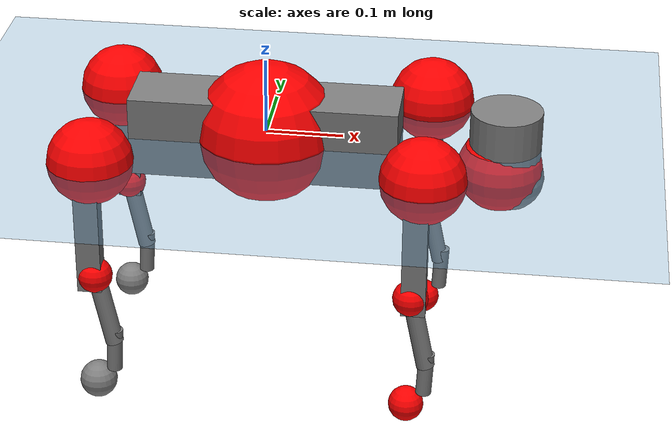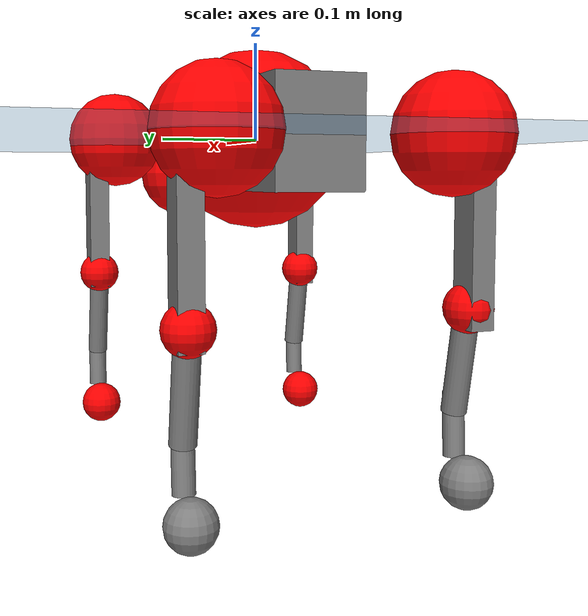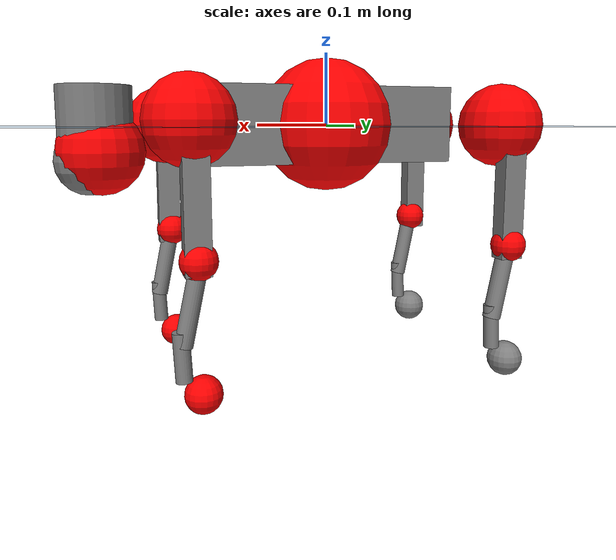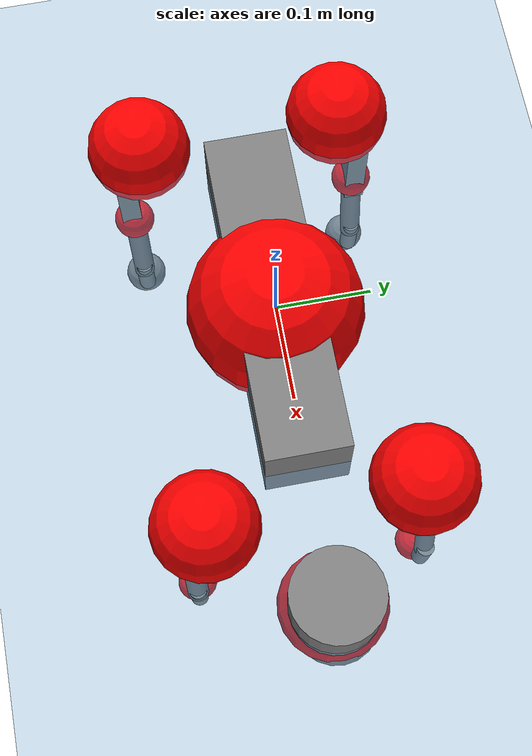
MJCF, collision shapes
<mujoco model="go2">
  <compiler angle="radian" assetdir="assets" balanceinertia="true" inertiafromgeom="false"/>

  <option timestep="0.005" density="1.2" viscosity="2e-05"/>

  <size nkey="1"/>

  <visual>
    <quality shadowsize="8192"/>
    <map shadowclip="0.5"/>
  </visual>

  <default>
    <default class="/">
      <geom contype="0" conaffinity="0" group="1" solref="-1000 -80"/>
      <site size="0.01 0.005 0.005" group="5"/>
      <general forcelimited="true" biastype="affine" gainprm="20" biasprm="0 -20 -0.5"/>
      <default class="go2">
        <joint armature="0.01" damping="0.01" frictionloss="0.2"/>
        <geom condim="1" margin="0.001"/>
        <default class="visual">
          <geom type="mesh" group="2"/>
        </default>
        <default class="collision">
          <geom group="3"/>
          <default class="foot">
            <geom size="0.022 0 0" condim="6" priority="1" friction="0.8 0.02 0.01" solimp="0.015 1 0.022"/>
          </default>
        </default>
        <default class="reward_collision_sphere">
          <geom group="5" rgba="1 0 0 1"/>
        </default>
      </default>
    </default>
  </default>

  <asset>
    <texture type="skybox" colorspace="auto" name="//unnamed_texture_0" builtin="gradient" rgb1="0.95 0.95 0.95" rgb2="0.95 0.95 0.95" width="100" height="600"/>
    <texture type="2d" colorspace="auto" name="texplane" builtin="checker" rgb1="0.345 0.575 0.748" rgb2="0.345 0.575 0.748" markrgb="1 1 1" width="512" height="512"/>
    <material name="MatPlane" class="/" texture="texplane" texuniform="true" texrepeat="2 2" specular="0.9"/>
    <material name="metal" class="/" rgba="0.9 0.95 0.95 1"/>
    <material name="black" class="/" rgba="0 0 0 1"/>
    <material name="white" class="/"/>
    <material name="gray" class="/" rgba="0.671705 0.692426 0.77427 1"/>
    <mesh name="base_0" class="/" file="base_0.obj"/>
    <mesh name="base_1" class="/" file="base_1.obj"/>
    <mesh name="base_2" class="/" file="base_2.obj"/>
    <mesh name="base_3" class="/" file="base_3.obj"/>
    <mesh name="base_4" class="/" file="base_4.obj"/>
    <mesh name="hip_0" class="/" file="hip_0.obj"/>
    <mesh name="hip_1" class="/" file="hip_1.obj"/>
    <mesh name="thigh_0" class="/" file="thigh_0.obj"/>
    <mesh name="thigh_1" class="/" file="thigh_1.obj"/>
    <mesh name="thigh_mirror_0" class="/" file="thigh_mirror_0.obj"/>
    <mesh name="thigh_mirror_1" class="/" file="thigh_mirror_1.obj"/>
    <mesh name="calf_0" class="/" file="calf_0.obj"/>
    <mesh name="calf_1" class="/" file="calf_1.obj"/>
    <mesh name="calf_mirror_0" class="/" file="calf_mirror_0.obj"/>
    <mesh name="calf_mirror_1" class="/" file="calf_mirror_1.obj"/>
    <mesh name="foot" class="/" file="foot.obj"/>
  </asset>

  <worldbody>
    <geom name="floor" class="/" size="100 100 0.125" type="plane" group="0" material="MatPlane"/>
    <light name="toplight_shadow" class="/" pos="0 0 5" dir="0.0990148 0.0990148 -0.990148" type="directional" ambient="0.04 0.04 0.04" diffuse="0.55 0.55 0.55" specular="0.12 0.12 0.12"/>
    <light name="toplight_fill" class="/" pos="0 0 5" dir="0.0990148 0.0990148 -0.990148" type="directional" castshadow="false" ambient="0.04 0.04 0.04" diffuse="0.3 0.3 0.3" specular="0.08 0.08 0.08"/>
    <body name="trunk" childclass="go2" pos="0.000318018 -0.000134445 0.00124348" quat="1 6.79038e-05 0.000218311 -8.57224e-05">
      <inertial pos="0.0243272 -0.00468803 -0.00619259" quat="-0.000580444 0.713484 -0.00178085 0.700669" mass="5.5677" diaginertia="0.151636 0.0706505 0.00585871"/>
      <joint name="//unnamed_joint_0" type="free" armature="0" damping="0" frictionloss="0"/>
      <geom name="//unnamed_geom_1" class="visual" material="black" mesh="base_0"/>
      <geom name="//unnamed_geom_2" class="visual" material="black" mesh="base_1"/>
      <geom name="//unnamed_geom_3" class="visual" material="black" mesh="base_2"/>
      <geom name="//unnamed_geom_4" class="visual" material="white" mesh="base_3"/>
      <geom name="//unnamed_geom_5" class="visual" material="gray" mesh="base_4"/>
      <geom name="trunk_1" class="collision" size="0.173882 0.0432164 0.0526916" type="box"/>
      <geom name="trunk_2" class="collision" size="0.0462207 0.0415986" pos="0.308888 0 0.00754553" type="cylinder"/>
      <geom name="trunk_3" class="collision" size="0.0434475" pos="0.317558 0 -0.0452732"/>
      <geom name="//unnamed_geom_9" class="reward_collision_sphere" size="0.0924414"/>
      <geom name="//unnamed_geom_10" class="reward_collision_sphere" size="0.0554648" pos="0.303469 0 -0.0339549"/>
      <site name="imu" pos="-0.018008 -0.00183129 0.0407209" size="0.00924414"/>
      <camera name="track" pos="0 -1.86974 0" quat="0.707107 0.707107 0 0" mode="trackcom"/>
      <camera name="ego_camera" pos="0.338151 0 0.0339549" quat="-0.5 -0.5 0.5 0.5"/>
      <body name="FL_hip" pos="0.207106 0.0439546 0.00553382" quat="0.999999 0.000198604 0.000291564 0.00096353">
        <inertial pos="-0.00265484 0.00132093 -0.000733563" quat="0.497202 0.508313 0.49949 0.494892" mass="0.505348" diaginertia="0.00128941 0.000411001 0.000114366"/>
        <joint name="FL_hip_joint" pos="0 0 0" axis="0.999998 -0.000656973 -0.00200484" stiffness="0.00515401" range="-1.07534 1.04677" armature="0.00912318" damping="0.00904665" frictionloss="0.210164"/>
        <geom name="//unnamed_geom_11" class="visual" material="metal" mesh="hip_0"/>
        <geom name="//unnamed_geom_12" class="visual" material="gray" mesh="hip_1"/>
        <geom name="//unnamed_geom_13" class="collision" size="0.0425231 0.0184883" pos="0 0.0747898 0" quat="0.707107 0.707107 0 0" type="cylinder"/>
        <geom name="//unnamed_geom_14" class="reward_collision_sphere" size="0.0554648" pos="0 0.0654411 0"/>
        <body name="FL_thigh" pos="-0.00101494 0.0886127 0.00173143" quat="1 0.000175972 0.000609561 -0.000374826">
          <inertial pos="-0.00442918 -0.0202435 -0.0251047" quat="0.829193 0.0825388 -0.0233126 0.552343" mass="0.978919" diaginertia="0.00878508 0.00424428 0.00023944"/>
          <joint name="FL_thigh_joint" pos="0 0 0" axis="0.00156568 0.99999 -0.00412086" range="-1.55989 3.51825" armature="0.0101853" damping="0.0080905" frictionloss="0.201681"/>
          <geom name="//unnamed_geom_15" class="visual" material="metal" mesh="thigh_0"/>
          <geom name="//unnamed_geom_16" class="visual" material="gray" mesh="thigh_1"/>
          <geom name="//unnamed_geom_17" class="collision" size="0.0984501 0.0113241 0.015715" pos="0 0 -0.0803599" quat="0.707107 0 0.707107 0" type="box"/>
          <body name="FL_calf" pos="-0.00176056 -0.00110737 -0.162456" quat="0.999998 -0.000273916 -0.00096142 0.00187323">
            <inertial pos="0.00555602 -0.000506776 -0.105504" quat="0.709975 0.000427495 -0.00425129 0.704214" mass="0.190094" diaginertia="0.00222083 0.0010804 1.34935e-05"/>
            <joint name="FL_calf_joint" pos="0 0 0" axis="0.00197108 0.999992 0.00335318" stiffness="0.00731051" range="-2.68588 -0.882929" armature="0.00872073" damping="0" frictionloss="0.196644"/>
            <geom name="//unnamed_geom_18" class="visual" material="gray" mesh="calf_0"/>
            <geom name="//unnamed_geom_19" class="visual" material="black" mesh="calf_1"/>
            <geom name="FL_calf0" class="collision" size="0.011093 0.0554648" pos="0.00867054 0 -0.0452732" quat="0.994493 0 -0.104807 0" type="cylinder"/>
            <geom name="//unnamed_geom_21" class="collision" size="0.0101686 0.0300435" pos="0.0216763 0 -0.111674" quat="0.999688 0 0.0249974 0" type="cylinder"/>
            <geom name="//unnamed_geom_22" class="visual" pos="0 0 -0.16072" quat="1 0 0 0" material="black" mesh="foot"/>
            <geom name="FL_foot" class="foot" size="0.0166195" pos="-0.00216763 0 -0.16072"/>
            <geom name="//unnamed_geom_24" class="reward_collision_sphere" size="0.0231104"/>
            <geom name="//unnamed_geom_25" class="reward_collision_sphere" size="0.0231104" pos="-0.00216763 0 -0.16072"/>
            <site name="FL_foot" class="foot" pos="-0.00216763 0 -0.16072" size="0.00924414"/>
          </body>
        </body>
      </body>
      <body name="FR_hip" pos="0.212154 -0.0439137 -0.000362717" quat="0.999999 -0.000396528 -0.00100282 -0.00036469">
        <inertial pos="-0.00520024 -0.00019468 -0.00288917" quat="0.50011 0.504222 0.496997 0.498642" mass="0.57542" diaginertia="0.00135831 0.000440518 0.000116978"/>
        <joint name="FR_hip_joint" pos="0 0 0" axis="0.999978 -0.00219382 0.00625883" stiffness="0.0022822" range="-1.08902 1.13049" armature="0.00923339" damping="0.0193975" frictionloss="0.18931"/>
        <geom name="//unnamed_geom_26" class="visual" pos="0 1.57087e-09 6.73777e-08" quat="4.63268e-05 1 0 0" material="metal" mesh="hip_0"/>
        <geom name="//unnamed_geom_27" class="visual" pos="0 2.54656e-09 -1.66651e-07" quat="4.63268e-05 1 0 0" material="gray" mesh="hip_1"/>
        <geom name="//unnamed_geom_28" class="collision" size="0.0425231 0.0184883" pos="0 -0.0747898 0" quat="0.707107 0.707107 0 0" type="cylinder"/>
        <geom name="//unnamed_geom_29" class="reward_collision_sphere" size="0.0554648" pos="0 -0.0654411 0"/>
        <body name="FR_thigh" pos="-0.00533284 -0.089698 0.001778" quat="0.999999 -0.00108455 -0.000234807 -4.39304e-05">
          <inertial pos="-0.00270475 0.0185758 -0.0241654" quat="0.553043 -0.01655 0.0844698 0.828694" mass="0.836473" diaginertia="0.00869105 0.00380922 0.000205691"/>
          <joint name="FR_thigh_joint" pos="0 0 0" axis="-0.0255628 -0.999672 0.0012379" stiffness="0.00466689" range="-3.60887 1.65352" armature="0.00928351" damping="0.0168381" frictionloss="0.162642"/>
          <geom name="//unnamed_geom_30" class="visual" material="metal" mesh="thigh_mirror_0"/>
          <geom name="//unnamed_geom_31" class="visual" material="gray" mesh="thigh_mirror_1"/>
          <geom name="//unnamed_geom_32" class="collision" size="0.0984501 0.0113241 0.015715" pos="0 0 -0.0803599" quat="0.707107 0 0.707107 0" type="box"/>
          <body name="FR_calf" pos="-0.00433146 0.0024914 -0.16013" quat="0.999999 -0.000417468 -0.000527119 -0.00104277">
            <inertial pos="0.00525295 -0.00183651 -0.111976" quat="0.708849 -0.000730603 0.00888604 0.705304" mass="0.20349" diaginertia="0.00220605 0.0010308 1.28284e-05"/>
            <joint name="FR_calf_joint" pos="0 0 0" axis="0.0268658 -0.999453 -0.0193035" range="0.88246 2.77581" armature="0.00904852" damping="0.0153698" frictionloss="0.239602"/>
            <geom name="//unnamed_geom_33" class="visual" material="gray" mesh="calf_mirror_0"/>
            <geom name="//unnamed_geom_34" class="visual" material="black" mesh="calf_mirror_1"/>
            <geom name="FR_calf0" class="collision" size="0.0120174 0.0554648" pos="0.0108382 0 -0.0452732" quat="0.995004 0 -0.0998334 0" type="cylinder"/>
            <geom name="//unnamed_geom_36" class="collision" size="0.0101686 0.0300435" pos="0.0216763 0 -0.111674" quat="0.999688 0 0.0249974 0" type="cylinder"/>
            <geom name="//unnamed_geom_37" class="visual" pos="0 0 -0.16072" quat="1 0 0 0" material="black" mesh="foot"/>
            <geom name="FR_foot" class="foot" size="0.0219506" pos="-0.00216763 0 -0.16072"/>
            <geom name="//unnamed_geom_39" class="reward_collision_sphere" size="0.0231104"/>
            <geom name="//unnamed_geom_40" class="reward_collision_sphere" size="0.0231104" pos="-0.00216763 0 -0.16072"/>
            <site name="FR_foot" class="foot" pos="-0.00216763 0 -0.16072" size="0.00924414"/>
          </body>
        </body>
      </body>
      <body name="RL_hip" pos="-0.212419 0.0416928 -0.000607091" quat="0.999999 -0.00161606 0.000233515 0.000101439">
        <inertial pos="0.00500546 0.00479832 0.0026078" quat="0.532686 0.489813 0.482695 0.49329" mass="0.575446" diaginertia="0.00135105 0.000421078 0.000115257"/>
        <joint name="RL_hip_joint" pos="0 0 0" axis="-0.999989 -0.00413398 0.00221691" stiffness="0.0108586" range="-0.998113 1.03042" armature="0.00901543" damping="0.00945321" frictionloss="0.191019"/>
        <geom name="//unnamed_geom_41" class="visual" pos="-2.86841e-09 0 -5.62275e-07" quat="4.63268e-05 0 1 0" material="metal" mesh="hip_0"/>
        <geom name="//unnamed_geom_42" class="visual" pos="-4.65004e-09 0 -4.98658e-07" quat="4.63268e-05 0 1 0" material="gray" mesh="hip_1"/>
        <geom name="//unnamed_geom_43" class="collision" size="0.0425231 0.0184883" pos="0 0.0747898 0" quat="0.707107 0.707107 0 0" type="cylinder"/>
        <geom name="//unnamed_geom_44" class="reward_collision_sphere" size="0.0554648" pos="0 0.0654411 0"/>
        <body name="RL_thigh" pos="-0.000973128 0.0919172 0.000347429" quat="1 3.57868e-05 -0.000149557 -0.000232252">
          <inertial pos="-0.00588443 -0.0196578 -0.0246655" quat="0.831118 0.0900922 -0.0251535 0.548173" mass="0.887281" diaginertia="0.00816842 0.00393307 0.000205687"/>
          <joint name="RL_thigh_joint" pos="0 0 0" axis="0.00282719 0.999862 -0.0163619" stiffness="0.00097329" range="-0.528766 4.52329" armature="0.00920602" damping="0.00105971" frictionloss="0.183744"/>
          <geom name="//unnamed_geom_45" class="visual" material="metal" mesh="thigh_0"/>
          <geom name="//unnamed_geom_46" class="visual" material="gray" mesh="thigh_1"/>
          <geom name="//unnamed_geom_47" class="collision" size="0.0984501 0.0113241 0.015715" pos="0 0 -0.0803599" quat="0.707107 0 0.707107 0" type="box"/>
          <body name="RL_calf" pos="-0.00196089 -0.000697995 -0.161014" quat="0.999999 -0.000734209 0.00101107 -0.00014572">
            <inertial pos="0.00483564 -0.00243895 -0.105741" quat="0.710658 0.00259501 -0.00463382 0.703517" mass="0.182783" diaginertia="0.00199286 0.000913075 1.09822e-05"/>
            <joint name="RL_calf_joint" pos="0 0 0" axis="0.00467456 0.999989 0.000812347" stiffness="0.00266441" range="-2.71848 -0.706316" armature="0.00973842" damping="0" frictionloss="0.193332"/>
            <geom name="//unnamed_geom_48" class="visual" material="gray" mesh="calf_0"/>
            <geom name="//unnamed_geom_49" class="visual" material="black" mesh="calf_1"/>
            <geom name="RL_calf0" class="collision" size="0.0120174 0.0554648" pos="0.0108382 0 -0.0452732" quat="0.995004 0 -0.0998334 0" type="cylinder"/>
            <geom name="//unnamed_geom_51" class="collision" size="0.0101686 0.0300435" pos="0.0216763 0 -0.111674" quat="0.999688 0 0.0249974 0" type="cylinder"/>
            <geom name="//unnamed_geom_52" class="visual" pos="0 0 -0.16072" quat="1 0 0 0" material="black" mesh="foot"/>
            <geom name="RL_foot" class="foot" size="0.0234596" pos="-0.00216763 0 -0.16072"/>
            <geom name="//unnamed_geom_54" class="reward_collision_sphere" size="0.0231104"/>
            <geom name="//unnamed_geom_55" class="reward_collision_sphere" size="0.0231104" pos="-0.00216763 0 -0.16072"/>
            <site name="RL_foot" class="foot" pos="-0.00216763 0 -0.16072" size="0.00924414"/>
          </body>
        </body>
      </body>
      <body name="RR_hip" pos="-0.20891 -0.0450101 -0.00176216" quat="0.999999 -0.00149624 -0.000332728 -0.000604138">
        <inertial pos="0.00825259 -0.000763292 -0.00136266" quat="0.489935 0.487368 0.523276 0.498616" mass="0.524163" diaginertia="0.00132733 0.000424518 0.000118547"/>
        <joint name="RR_hip_joint" pos="0 0 0" axis="-0.999918 0.00728085 -0.0105212" range="-0.987896 1.09706" armature="0.0109641" damping="0.0159875" frictionloss="0.181772"/>
        <geom name="//unnamed_geom_56" class="visual" pos="2.86326e-09 1.57087e-09 -6.29652e-07" quat="2.14617e-09 4.63268e-05 4.63268e-05 -1" material="metal" mesh="hip_0"/>
        <geom name="//unnamed_geom_57" class="visual" pos="4.66279e-09 2.54656e-09 -3.32007e-07" quat="2.14617e-09 4.63268e-05 4.63268e-05 -1" material="gray" mesh="hip_1"/>
        <geom name="//unnamed_geom_58" class="collision" size="0.0425231 0.0184883" pos="0 -0.0747898 0" quat="0.707107 0.707107 0 0" type="cylinder"/>
        <geom name="//unnamed_geom_59" class="reward_collision_sphere" size="0.0554648" pos="0 -0.0654411 0"/>
        <body name="RR_thigh" pos="-0.00152038 -0.0880051 0.00484685" quat="1 0.000616604 0.000565853 -7.2735e-05">
          <inertial pos="-0.00385622 0.014744 -0.0244769" quat="0.560077 -0.0178402 0.0819073 0.824189" mass="0.988351" diaginertia="0.00943363 0.00448004 0.000226083"/>
          <joint name="RR_thigh_joint" pos="0 0 0" axis="-0.000108306 -0.999997 -0.00224781" range="-4.50801 0.608216" armature="0.0062312" damping="0.00895851" frictionloss="0.204638"/>
          <geom name="//unnamed_geom_60" class="visual" material="metal" mesh="thigh_mirror_0"/>
          <geom name="//unnamed_geom_61" class="visual" material="gray" mesh="thigh_mirror_1"/>
          <geom name="//unnamed_geom_62" class="collision" size="0.0984501 0.0113241 0.015715" pos="0 0 -0.0803599" quat="0.707107 0 0.707107 0" type="box"/>
          <body name="RR_calf" pos="0.00468127 0.00224708 -0.160555" quat="1 0.000520396 -0.000316279 0.000443078">
            <inertial pos="0.00760149 0.000401707 -0.106221" quat="0.688585 -0.0161694 -0.00525178 0.724956" mass="0.197937" diaginertia="0.00227424 0.00100709 1.18834e-05"/>
            <joint name="RR_calf_joint" pos="0 0 0" axis="0.000460072 -0.999818 -0.0190889" range="0.791593 2.65221" armature="0.00885143" damping="0.00649009" frictionloss="0.205832"/>
            <geom name="//unnamed_geom_63" class="visual" material="gray" mesh="calf_mirror_0"/>
            <geom name="//unnamed_geom_64" class="visual" material="black" mesh="calf_mirror_1"/>
            <geom name="RR_calf0" class="collision" size="0.0120174 0.0554648" pos="0.0108382 0 -0.0452732" quat="0.995004 0 -0.0998334 0" type="cylinder"/>
            <geom name="//unnamed_geom_66" class="collision" size="0.0101686 0.0300435" pos="0.0216763 0 -0.111674" quat="0.999688 0 0.0249974 0" type="cylinder"/>
            <geom name="//unnamed_geom_67" class="visual" pos="0 0 -0.16072" quat="1 0 0 0" material="black" mesh="foot"/>
            <geom name="RR_foot" class="foot" size="0.0246552" pos="-0.00216763 0 -0.16072"/>
            <geom name="//unnamed_geom_69" class="reward_collision_sphere" size="0.0231104"/>
            <geom name="//unnamed_geom_70" class="reward_collision_sphere" size="0.0231104" pos="-0.00216763 0 -0.16072"/>
            <site name="RR_foot" class="foot" pos="-0.00216763 0 -0.16072" size="0.00924414"/>
          </body>
        </body>
      </body>
    </body>
  </worldbody>

  <contact>
    <pair class="/" geom1="floor" geom2="FL_foot" name="//unnamed_contact_0"/>
    <pair class="/" geom1="floor" geom2="FR_foot" name="//unnamed_contact_1"/>
    <pair class="/" geom1="floor" geom2="RL_foot" name="//unnamed_contact_2"/>
    <pair class="/" geom1="floor" geom2="RR_foot" name="//unnamed_contact_3"/>
  </contact>

  <actuator>
    <general name="FL_hip" class="/" joint="FL_hip_joint" forcerange="-21.7128 21.7128" gainprm="16.4689" biasprm="0 -16.4689 -0.479673"/>
    <general name="FL_thigh" class="/" joint="FL_thigh_joint" forcerange="-26.7039 26.7039" gainprm="16.4689" biasprm="0 -16.4689 -0.479673"/>
    <general name="FL_calf" class="/" joint="FL_calf_joint" forcerange="-45.615 45.615" gainprm="16.4689" biasprm="0 -16.4689 -0.479673"/>
    <general name="FR_hip" class="/" joint="FR_hip_joint" forcerange="-20.1401 20.1401" gainprm="16.4689" biasprm="0 -16.4689 -0.479673"/>
    <general name="FR_thigh" class="/" joint="FR_thigh_joint" forcerange="-23.4572 23.4572" gainprm="16.4689" biasprm="0 -16.4689 -0.479673"/>
    <general name="FR_calf" class="/" joint="FR_calf_joint" forcerange="-40.0086 40.0086" gainprm="16.4689" biasprm="0 -16.4689 -0.479673"/>
    <general name="RL_hip" class="/" joint="RL_hip_joint" forcerange="-21.2875 21.2875" gainprm="16.4689" biasprm="0 -16.4689 -0.479673"/>
    <general name="RL_thigh" class="/" joint="RL_thigh_joint" forcerange="-21.8911 21.8911" gainprm="16.4689" biasprm="0 -16.4689 -0.479673"/>
    <general name="RL_calf" class="/" joint="RL_calf_joint" forcerange="-41.0092 41.0092" gainprm="16.4689" biasprm="0 -16.4689 -0.479673"/>
    <general name="RR_hip" class="/" joint="RR_hip_joint" forcerange="-26.5082 26.5082" gainprm="16.4689" biasprm="0 -16.4689 -0.479673"/>
    <general name="RR_thigh" class="/" joint="RR_thigh_joint" forcerange="-19.969 19.969" gainprm="16.4689" biasprm="0 -16.4689 -0.479673"/>
    <general name="RR_calf" class="/" joint="RR_calf_joint" forcerange="-38.7201 38.7201" gainprm="16.4689" biasprm="0 -16.4689 -0.479673"/>
  </actuator>

  <sensor>
    <gyro site="imu" name="imu_angular_velocity"/>
    <velocimeter site="imu" name="imu_linear_velocity"/>
    <framelinvel objtype="site" objname="FL_foot" name="FL_foot_global_linear_velocity"/>
    <framelinvel objtype="site" objname="FR_foot" name="FR_foot_global_linear_velocity"/>
    <framelinvel objtype="site" objname="RL_foot" name="RL_foot_global_linear_velocity"/>
    <framelinvel objtype="site" objname="RR_foot" name="RR_foot_global_linear_velocity"/>
  </sensor>

  <keyframe>
    <key name="home" qpos="0 0 0.325 1 0 0 0 0.1 0.8 -1.5 -0.1 -0.8 1.5 -0.1 0.8 -1.5 0.1 -0.8 1.5"/>
  </keyframe>
</mujoco>
